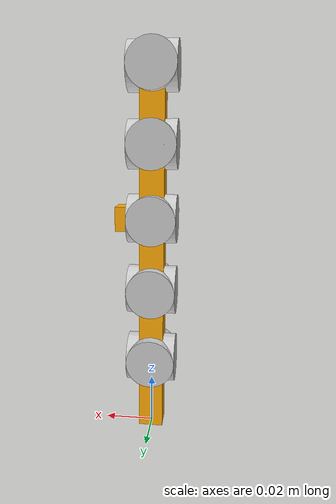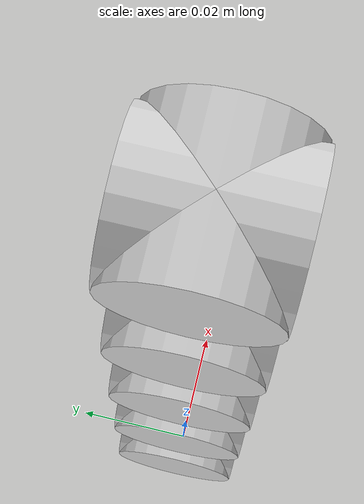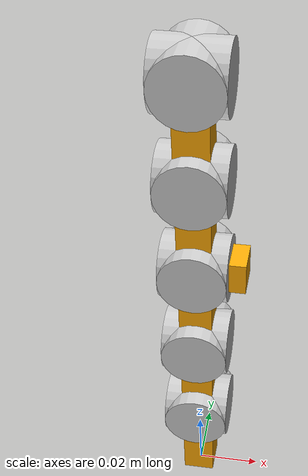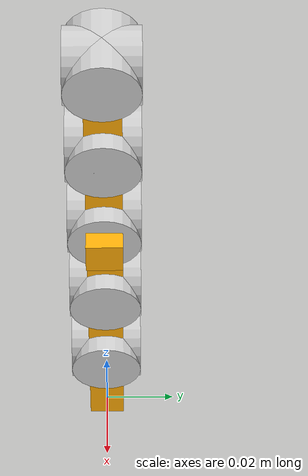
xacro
<?xml version="1.0"?>
<robot name="arm" xmlns:xacro="http://www.ros.org/wiki/xacro">

  <xacro:property name="PI" value="3.14159265359"/>

  <!-- Joints Control in Gazebo -->
  <gazebo>
    <plugin name="gazebo_ros_control" filename="libgazebo_ros_control.so"/>
  </gazebo>

  <!-- Geometrical properties -->
  <xacro:property name="link_side" value="0.01"/>
  <xacro:property name="joint_radius" value="0.01"/>
  <xacro:property name="joint_length" value="0.02"/>
  <xacro:property name="toe_length" value="0.03"/>
  <xacro:property name="foot_length" value="0.04"/>
  <xacro:property name="leg_length" value="0.40"/>
  <xacro:property name="arm_length" value="0.03"/>
  <xacro:property name="hand_length" value="0.04"/>
  <xacro:property name="finger_length" value="0.03"/>

  <!-- Materials -->
  <material name="orange">
    <color rgba="1.00 0.67 0.02 1.00"/>
  </material>

  <material name="gray">
    <color rgba="0.80 0.80 0.80 1.00"/>
  </material>

  <!-- Generates a box visual/collision/inertial -->
  <xacro:macro name="prism_vci" params="side length mass:=0.5 *origin">

    <xacro:macro name="prism_geometry">
      <xacro:insert_block name="origin"/>
      <geometry>
        <box size="${side} ${side} ${length}"/>
      </geometry>
    </xacro:macro>

    <visual>
      <xacro:prism_geometry/>
      <material name="orange"/>
    </visual>

    <collision>
      <xacro:prism_geometry/>
    </collision>

    <inertial>
      <xacro:insert_block name="origin"/>
        <mass value="0.00001" />
            <inertia ixx="0.001" ixy="0.0" ixz="0.0" iyy="0.001" iyz="0.0" izz="0.001" />
    </inertial>

  </xacro:macro>

  <!-- Generates a cylinder visual/collision -->
  <xacro:macro name="cylinder_vc" params="radius length *origin">

    <xacro:macro name="cylinder_geometry">
      <xacro:insert_block name="origin"/>
      <geometry>
        <cylinder length="${length}" radius="${radius}"/>
      </geometry>
    </xacro:macro>

    <visual>
      <xacro:cylinder_geometry/>
      <material name="gray"/>
    </visual>

    <collision>
      <xacro:cylinder_geometry/>
    </collision>

  </xacro:macro>

   <!-- Generates child joint of parent -->
  <xacro:macro name="arm_joint" params="childx childy parent dist:=0 axis">

    <joint name="${parent}_${childx}_joint" type="revolute">
      <origin xyz="0 0 ${dist}" rpy="0 0 0"/>
      <parent link="${parent}"/>
      <child link="${childx}"/>
      <axis xyz="1 0 0"/>
      <limit lower="-1.57"
            upper="1.57"
            effort="1000"
            velocity="2" />
    </joint>

    <!-- Required for ROS control -->
    <transmission name="${parent}_${childx}_transmission">
      <type>transmission_interface/SimpleTransmission</type>
      <joint name="${parent}_${childx}_joint">
        <hardwareInterface>hardware_interface/PositionJointInterface</hardwareInterface>
      </joint>
       <actuator name="$${parent}_${childx}_actuator">
        <mechanicalReduction>1</mechanicalReduction>
        <hardwareInterface>hardware_interface/PositionJointInterface</hardwareInterface>
      </actuator>
    </transmission>

    <link name="${parent}">
    <xacro:prism_vci length="${dist}" side="${link_side}">
        <origin xyz="0 0 ${dist/2}" rpy="0 0 0"/>
      </xacro:prism_vci>
       <xacro:cylinder_vc radius="${joint_radius}" length="${joint_length}">
      <origin xyz="0 0 ${dist}" rpy="0 ${PI/2} 0"/>
      </xacro:cylinder_vc>

      <xacro:cylinder_vc radius="${joint_radius}" length="${joint_length}">
  <origin xyz="0 0 ${dist}" rpy="${PI/2} 0 0"/>

      </xacro:cylinder_vc>
    </link>

    <gazebo reference="${parent}">
      <material>Gazebo/Orange</material>

    </gazebo>

    <!-- yyyyyyyyyyyyyyyyyyyy -->
<joint name="${childx}_${childy}_joint" type="revolute">
      <origin xyz="0 0 0" rpy="0 0 0"/>
      <parent link="${childx}"/>
      <child link="${childy}"/>
      <axis xyz="0 1 0"/>
      <limit  lower="-1.57"
            upper="1.57"
            effort="1000"
            velocity="2" />
    </joint>

    <!-- Required for ROS control -->
    <transmission name="${childx}_${childy}_transmission">
      <type>transmission_interface/SimpleTransmission</type>
      <joint name="${childx}_${childy}_joint">
        <hardwareInterface>hardware_interface/PositionJointInterface</hardwareInterface>
      </joint>
       <actuator name="$${childx}_${childy}_actuator">
        <mechanicalReduction>1</mechanicalReduction>
        <hardwareInterface>hardware_interface/PositionJointInterface</hardwareInterface>
      </actuator>
    </transmission>

    <link name="${childx}">
          <inertial>
      <origin xyz="0 0 0" rpy="0 0 0"/>
       <mass value="0.00001" />
            <inertia ixx="0.001" ixy="0.0" ixz="0.0" iyy="0.001" iyz="0.0" izz="0.001" />
    </inertial>

    </link>

    <gazebo reference="${childx}">
      <material>Gazebo/Orange</material>
    </gazebo>

  </xacro:macro>

  <!-- World frame (for Gazebo) -->
<link name="world"/>

  <!-- Arm fixed to world frame  -->
  <joint name="world_foot_joint" type="floating">
   <origin xyz="0 0 0" rpy="0 0 0"/>
    <parent link="world"/>
    <child link="link0"/>
  </joint>

  <!-- Arm fixed to world frame  -->

  <!-- Joints Chain -->
   <xacro:arm_joint parent="link0" childx="link1x" childy="link1y" axis="0 0 1" dist="${arm_length}"/>
     <xacro:arm_joint parent="link1y" childx="link2x" childy="link2y" axis="0 0 1" dist="${arm_length}"/>
       <xacro:arm_joint parent="link2y" childx="link3x" childy="link3y" axis="0 0 1" dist="${arm_length}"/>
         <xacro:arm_joint parent="link3y" childx="link4x" childy="link4y" axis="0 0 1" dist="${arm_length}"/>
           <xacro:arm_joint parent="link4y" childx="link5x" childy="link5y" axis="0 0 1" dist="${arm_length}"/>

  <!-- End effector -->
  <link name="link5y">
    <inertial>
      <origin xyz="0 0 0" rpy="0 0 0"/>
      <mass value="0.00001" />
            <inertia ixx="0.001" ixy="0.0" ixz="0.0" iyy="0.001" iyz="0.0" izz="0.001" />
    </inertial>
  </link>

  <gazebo reference="link5y">
    <material>Gazebo/Red</material>
  </gazebo>
<!-- flag -->

 <joint name="mid_upflaag" type="fixed">
  <origin xyz="${joint_radius} 0 0" rpy="0 0 0"/>
    <parent link="link3x"/>
    <child link="upflag"/>
  </joint>

  <link name="upflag">
    <xacro:prism_vci length="0.01" side="${link_side}">
      <origin xyz="0 0 0" rpy="0 0 0"/>
    </xacro:prism_vci>
  </link>

    <gazebo>
      <plugin name="imu_plugin" filename="libgazebo_ros_p3d.so">
        <alwaysOn>true</alwaysOn>
        <updateRate>50.0</updateRate>
        <bodyName>upflag</bodyName>
        <topicName>base_pose_ground_truth</topicName>
        <gaussianNoise>0.0</gaussianNoise>
        <frameName>world</frameName>
        <xyzOffsets>0 0 0</xyzOffsets>
        <rpyOffsets>0 0 0</rpyOffsets>
      </plugin>
    </gazebo>

</robot>
